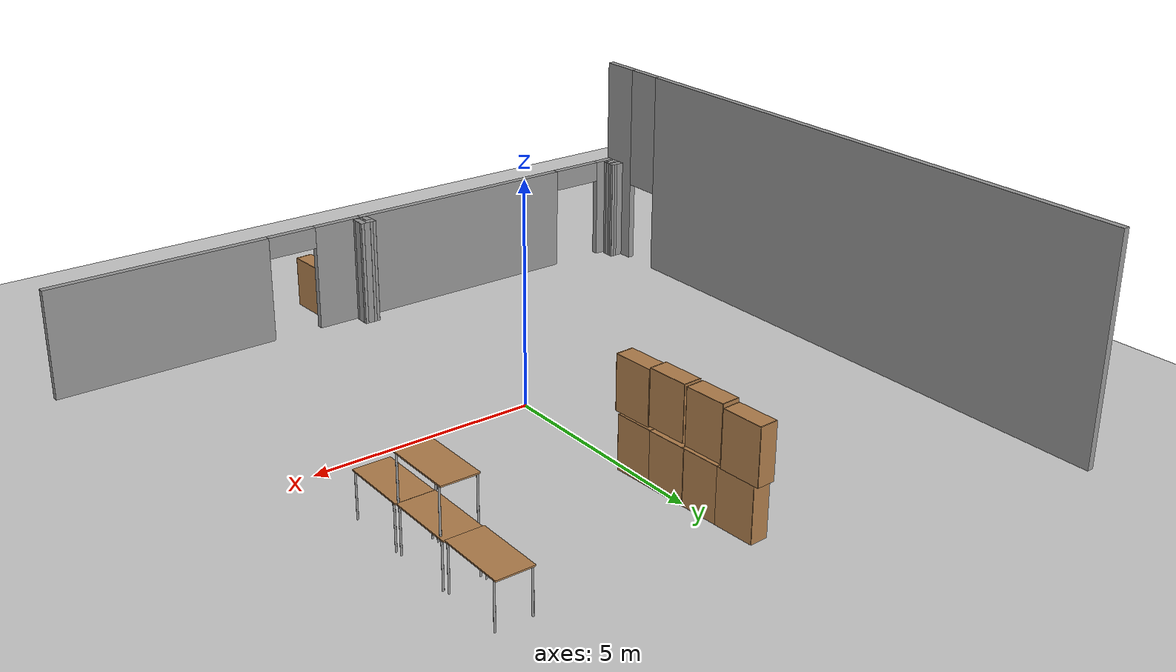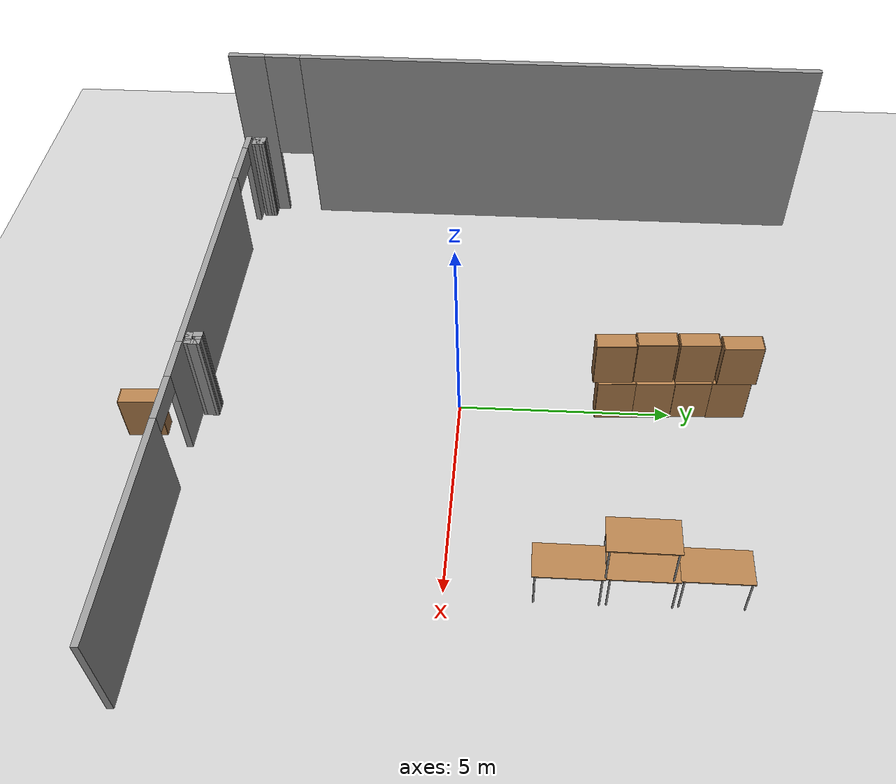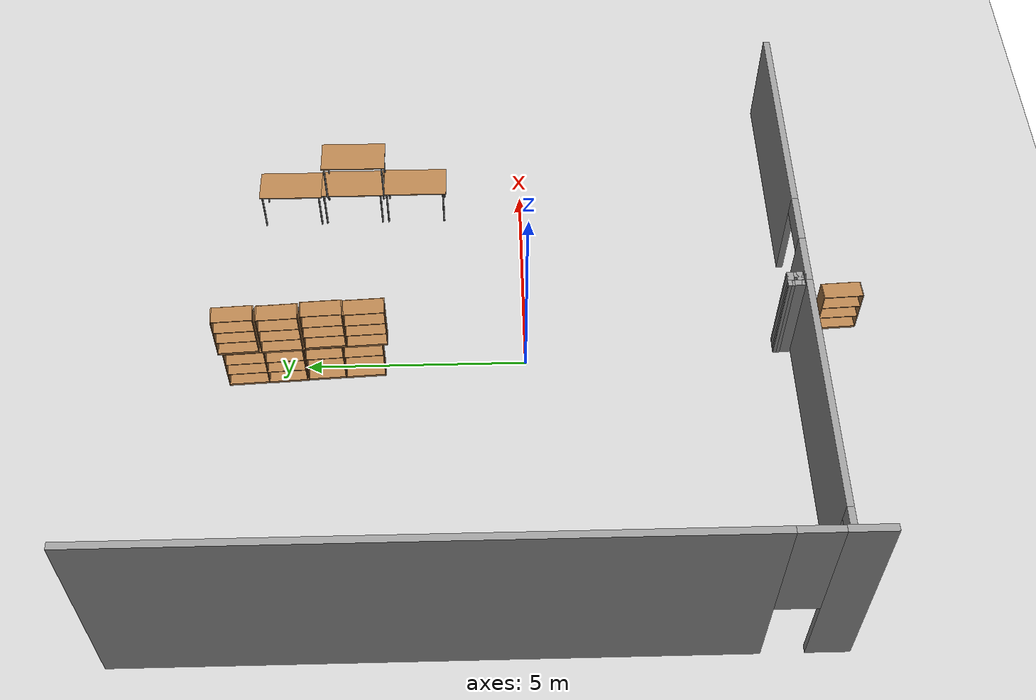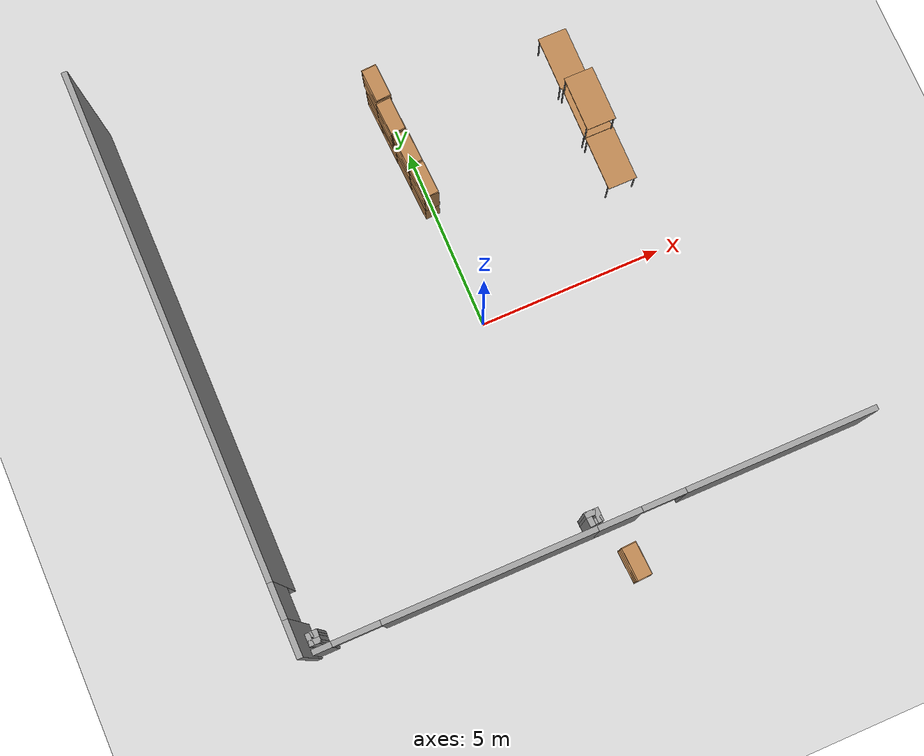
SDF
<sdf version="1.7">
 <world name="default">
  <model name="ground_plane">
   <static>1</static>
   <link name="link">
    <collision name="collision">
     <geometry><plane><normal>0 0 1</normal><size>100 100</size></plane></geometry>
     <surface>
      <contact><collide_bitmask>65535</collide_bitmask></contact>
      <friction><ode><mu>100</mu><mu2>50</mu2></ode></friction>
     </surface>
    </collision>
    <visual name="visual">
     <cast_shadows>0</cast_shadows>
     <geometry><plane><normal>0 0 1</normal><size>100 100</size></plane></geometry>
     <material>
      <script><uri>file://media/materials/scripts/gazebo.material</uri><name>Gazebo/Grey</name></script>
     </material>
    </visual>
   </link>
  </model>
  <model name="XXXXX_office_centered">
   <pose>8.46852 -9.33941 0 0 -0 0</pose>
   <link name="Wall_0">
    <pose>-15.6747 10.5251 0 0 -0 1.5708</pose>
    <visual name="Wall_0_Visual_0">
     <pose>-7.03494 0 2.5 0 -0 0</pose>
     <geometry><box><size>0.930116 0.15 5</size></box></geometry>
     <material>
      <script><uri>file://media/materials/scripts/gazebo.material</uri><name>Gazebo/Grey</name></script>
      <ambient>1 1 1 1</ambient>
     </material>
     <meta><layer>0</layer></meta>
    </visual>
    <collision name="Wall_0_Collision_0">
     <geometry><box><size>0.930116 0.15 5</size></box></geometry>
     <pose>-7.03494 0 2.5 0 -0 0</pose>
    </collision>
    <visual name="Wall_0_Visual_1">
     <pose>0.915058 0 2.5 0 -0 0</pose>
     <geometry><box><size>13.1699 0.15 5</size></box></geometry>
     <material>
      <script><uri>file://media/materials/scripts/gazebo.material</uri><name>Gazebo/Grey</name></script>
      <ambient>1 1 1 1</ambient>
     </material>
     <meta><layer>0</layer></meta>
    </visual>
    <collision name="Wall_0_Collision_1">
     <geometry><box><size>13.1699 0.15 5</size></box></geometry>
     <pose>0.915058 0 2.5 0 -0 0</pose>
    </collision>
    <visual name="Wall_0_Visual_2">
     <pose>-6.11988 0 3.5 0 -0 0</pose>
     <geometry><box><size>0.9 0.15 3</size></box></geometry>
     <material>
      <script><uri>file://media/materials/scripts/gazebo.material</uri><name>Gazebo/Grey</name></script>
      <ambient>1 1 1 1</ambient>
     </material>
     <meta><layer>0</layer></meta>
    </visual>
    <collision name="Wall_0_Collision_2">
     <geometry><box><size>0.9 0.15 3</size></box></geometry>
     <pose>-6.11988 0 3.5 0 -0 0</pose>
    </collision>
   </link>
   <link name="Wall_112">
    <collision name="Wall_112_Collision">
     <geometry><box><size>0.358506 0.15 2.5</size></box></geometry>
     <pose>0 0 1.25 0 -0 0</pose>
    </collision>
    <visual name="Wall_112_Visual">
     <pose>0 0 1.25 0 -0 0</pose>
     <geometry><box><size>0.358506 0.15 2.5</size></box></geometry>
     <material>
      <script><uri>file://media/materials/scripts/gazebo.material</uri><name>Gazebo/Grey</name></script>
      <ambient>1 1 1 1</ambient>
     </material>
     <meta><layer>0</layer></meta>
    </visual>
    <pose>-15.455 3.56311 0 0 -0 -0.010309</pose>
   </link>
   <link name="Wall_113">
    <collision name="Wall_113_Collision">
     <geometry><box><size>0.341348 0.15 2.5</size></box></geometry>
     <pose>0 0 1.25 0 -0 0</pose>
    </collision>
    <visual name="Wall_113_Visual">
     <pose>0 0 1.25 0 -0 0</pose>
     <geometry><box><size>0.341348 0.15 2.5</size></box></geometry>
     <material>
      <script><uri>file://media/materials/scripts/gazebo.material</uri><name>Gazebo/Grey</name></script>
      <ambient>1 1 1 1</ambient>
     </material>
     <meta><layer>0</layer></meta>
    </visual>
    <pose>-15.3539 3.46638 0 0 -0 -1.60449</pose>
   </link>
   <link name="Wall_114">
    <collision name="Wall_114_Collision">
     <geometry><box><size>0.337013 0.15 2.5</size></box></geometry>
     <pose>0 0 1.25 0 -0 0</pose>
    </collision>
    <visual name="Wall_114_Visual">
     <pose>0 0 1.25 0 -0 0</pose>
     <geometry><box><size>0.337013 0.15 2.5</size></box></geometry>
     <material>
      <script><uri>file://media/materials/scripts/gazebo.material</uri><name>Gazebo/Grey</name></script>
      <ambient>1 1 1 1</ambient>
     </material>
     <meta><layer>0</layer></meta>
    </visual>
    <pose>-15.4507 3.37181 0 0 -0 3.1301</pose>
   </link>
   <link name="Wall_115">
    <collision name="Wall_115_Collision">
     <geometry><box><size>0.326267 0.15 2.5</size></box></geometry>
     <pose>0 0 1.25 0 -0 0</pose>
    </collision>
    <visual name="Wall_115_Visual">
     <pose>0 0 1.25 0 -0 0</pose>
     <geometry><box><size>0.326267 0.15 2.5</size></box></geometry>
     <material>
      <script><uri>file://media/materials/scripts/gazebo.material</uri><name>Gazebo/Grey</name></script>
      <ambient>1 1 1 1</ambient>
     </material>
     <meta><layer>0</layer></meta>
    </visual>
    <pose>-15.5452 3.46101 0 0 -0 1.58299</pose>
   </link>
   <link name="Wall_117">
    <collision name="Wall_117_Collision">
     <geometry><box><size>0.384377 0.15 2.5</size></box></geometry>
     <pose>0 0 1.25 0 -0 0</pose>
    </collision>
    <visual name="Wall_117_Visual">
     <pose>0 0 1.25 0 -0 0</pose>
     <geometry><box><size>0.384377 0.15 2.5</size></box></geometry>
     <material>
      <script><uri>file://media/materials/scripts/gazebo.material</uri><name>Gazebo/Grey</name></script>
      <ambient>1 1 1 1</ambient>
     </material>
     <meta><layer>0</layer></meta>
    </visual>
    <pose>-8.21891 3.44274 0 0 -0 1.60748</pose>
   </link>
   <link name="Wall_118">
    <collision name="Wall_118_Collision">
     <geometry><box><size>0.378002 0.15 2.5</size></box></geometry>
     <pose>0 0 1.25 0 -0 0</pose>
    </collision>
    <visual name="Wall_118_Visual">
     <pose>0 0 1.25 0 -0 0</pose>
     <geometry><box><size>0.378002 0.15 2.5</size></box></geometry>
     <material>
      <script><uri>file://media/materials/scripts/gazebo.material</uri><name>Gazebo/Grey</name></script>
      <ambient>1 1 1 1</ambient>
     </material>
     <meta><layer>0</layer></meta>
    </visual>
    <pose>-8.10928 3.55881 0 0 -0 -0.009434</pose>
   </link>
   <link name="Wall_119">
    <collision name="Wall_119_Collision">
     <geometry><box><size>0.364986 0.15 2.5</size></box></geometry>
     <pose>0 0 1.25 0 -0 0</pose>
    </collision>
    <visual name="Wall_119_Visual">
     <pose>0 0 1.25 0 -0 0</pose>
     <geometry><box><size>0.364986 0.15 2.5</size></box></geometry>
     <material>
      <script><uri>file://media/materials/scripts/gazebo.material</uri><name>Gazebo/Grey</name></script>
      <ambient>1 1 1 1</ambient>
     </material>
     <meta><layer>0</layer></meta>
    </visual>
    <pose>-7.99429 3.45026 0 0 -0 -1.5608</pose>
   </link>
   <link name="Wall_120">
    <collision name="Wall_120_Collision">
     <geometry><box><size>0.362837 0.15 2.5</size></box></geometry>
     <pose>0 0 1.25 0 -0 0</pose>
    </collision>
    <visual name="Wall_120_Visual">
     <pose>0 0 1.25 0 -0 0</pose>
     <geometry><box><size>0.362837 0.15 2.5</size></box></geometry>
     <material>
      <script><uri>file://media/materials/scripts/gazebo.material</uri><name>Gazebo/Grey</name></script>
      <ambient>1 1 1 1</ambient>
     </material>
     <meta><layer>0</layer></meta>
    </visual>
    <pose>-8.09961 3.34064 0 0 -0 -3.12139</pose>
   </link>
   <link name="Wall_36">
    <pose>-11.8534 3.15504 0 0 -0 0</pose>
    <visual name="Wall_36_Visual_0">
     <pose>-3.55705 0 1.25 0 -0 0</pose>
     <geometry><box><size>0.635899 0.15 2.5</size></box></geometry>
     <material>
      <script><uri>file://media/materials/scripts/gazebo.material</uri><name>Gazebo/Grey</name></script>
      <ambient>1 1 1 1</ambient>
     </material>
     <meta><layer>0</layer></meta>
    </visual>
    <collision name="Wall_36_Collision_0">
     <geometry><box><size>0.635899 0.15 2.5</size></box></geometry>
     <pose>-3.55705 0 1.25 0 -0 0</pose>
    </collision>
    <visual name="Wall_36_Visual_1">
     <pose>0.956031 0 1.25 0 -0 0</pose>
     <geometry><box><size>5.83794 0.15 2.5</size></box></geometry>
     <material>
      <script><uri>file://media/materials/scripts/gazebo.material</uri><name>Gazebo/Grey</name></script>
      <ambient>1 1 1 1</ambient>
     </material>
     <meta><layer>0</layer></meta>
    </visual>
    <collision name="Wall_36_Collision_1">
     <geometry><box><size>5.83794 0.15 2.5</size></box></geometry>
     <pose>0.956031 0 1.25 0 -0 0</pose>
    </collision>
    <visual name="Wall_36_Visual_2">
     <pose>-2.60102 0 2.25 0 -0 0</pose>
     <geometry><box><size>1.27616 0.15 0.5</size></box></geometry>
     <material>
      <script><uri>file://media/materials/scripts/gazebo.material</uri><name>Gazebo/Grey</name></script>
      <ambient>1 1 1 1</ambient>
     </material>
     <meta><layer>0</layer></meta>
    </visual>
    <collision name="Wall_36_Collision_2">
     <geometry><box><size>1.27616 0.15 0.5</size></box></geometry>
     <pose>-2.60102 0 2.25 0 -0 0</pose>
    </collision>
   </link>
   <link name="Wall_37">
    <pose>-4.37835 3.15504 0 0 -0 0</pose>
    <visual name="Wall_37_Visual_0">
     <pose>-3.16264 0 1.25 0 -0 0</pose>
     <geometry><box><size>1.17472 0.15 2.5</size></box></geometry>
     <material>
      <script><uri>file://media/materials/scripts/gazebo.material</uri><name>Gazebo/Grey</name></script>
      <ambient>1 1 1 1</ambient>
     </material>
     <meta><layer>0</layer></meta>
    </visual>
    <collision name="Wall_37_Collision_0">
     <geometry><box><size>1.17472 0.15 2.5</size></box></geometry>
     <pose>-3.16264 0 1.25 0 -0 0</pose>
    </collision>
    <visual name="Wall_37_Visual_1">
     <pose>1.17415 0 1.25 0 -0 0</pose>
     <geometry><box><size>5.15171 0.15 2.5</size></box></geometry>
     <material>
      <script><uri>file://media/materials/scripts/gazebo.material</uri><name>Gazebo/Grey</name></script>
      <ambient>1 1 1 1</ambient>
     </material>
     <meta><layer>0</layer></meta>
    </visual>
    <collision name="Wall_37_Collision_1">
     <geometry><box><size>5.15171 0.15 2.5</size></box></geometry>
     <pose>1.17415 0 1.25 0 -0 0</pose>
    </collision>
    <visual name="Wall_37_Visual_2">
     <pose>-1.98849 0 2.25 0 -0 0</pose>
     <geometry><box><size>1.17357 0.15 0.5</size></box></geometry>
     <material>
      <script><uri>file://media/materials/scripts/gazebo.material</uri><name>Gazebo/Grey</name></script>
      <ambient>1 1 1 1</ambient>
     </material>
     <meta><layer>0</layer></meta>
    </visual>
    <collision name="Wall_37_Collision_2">
     <geometry><box><size>1.17357 0.15 0.5</size></box></geometry>
     <pose>-1.98849 0 2.25 0 -0 0</pose>
    </collision>
   </link>
   <static>1</static>
  </model>
  <model name="bookshelf_9_clone_1">
   <static>1</static>
   <link name="link">
    <inertial><mass>1</mass></inertial>
    <collision name="collision_back">
     <pose>0 0.005 0.6 0 -0 0</pose>
     <geometry><box><size>0.9 0.01 1.2</size></box></geometry>
    </collision>
    <visual name="visual1">
     <pose>0 0.005 0.6 0 -0 0</pose>
     <geometry><box><size>0.9 0.01 1.2</size></box></geometry>
     <material>
      <script><uri>file://media/materials/scripts/gazebo.material</uri><name>Gazebo/Wood</name></script>
     </material>
    </visual>
    <collision name="left_side">
     <pose>0.45 -0.195 0.6 0 -0 0</pose>
     <geometry><box><size>0.02 0.4 1.2</size></box></geometry>
    </collision>
    <visual name="visual2">
     <pose>0.45 -0.195 0.6 0 -0 0</pose>
     <geometry><box><size>0.02 0.4 1.2</size></box></geometry>
     <material>
      <script><uri>file://media/materials/scripts/gazebo.material</uri><name>Gazebo/Wood</name></script>
     </material>
    </visual>
    <collision name="right_side">
     <pose>-0.45 -0.195 0.6 0 -0 0</pose>
     <geometry><box><size>0.02 0.4 1.2</size></box></geometry>
    </collision>
    <visual name="visual3">
     <pose>-0.45 -0.195 0.6 0 -0 0</pose>
     <geometry><box><size>0.02 0.4 1.2</size></box></geometry>
     <material>
      <script><uri>file://media/materials/scripts/gazebo.material</uri><name>Gazebo/Wood</name></script>
     </material>
    </visual>
    <collision name="bottom">
     <pose>0 -0.195 0.03 0 -0 0</pose>
     <geometry><box><size>0.88 0.4 0.06</size></box></geometry>
    </collision>
    <visual name="visual4">
     <pose>0 -0.195 0.03 0 -0 0</pose>
     <geometry><box><size>0.88 0.4 0.06</size></box></geometry>
     <material>
      <script><uri>file://media/materials/scripts/gazebo.material</uri><name>Gazebo/Wood</name></script>
     </material>
    </visual>
    <collision name="top">
     <pose>0 -0.195 1.19 0 -0 0</pose>
     <geometry><box><size>0.88 0.4 0.02</size></box></geometry>
    </collision>
    <visual name="visual5">
     <pose>0 -0.195 1.19 0 -0 0</pose>
     <geometry><box><size>0.88 0.4 0.02</size></box></geometry>
     <material>
      <script><uri>file://media/materials/scripts/gazebo.material</uri><name>Gazebo/Wood</name></script>
     </material>
    </visual>
    <collision name="low_shelf">
     <pose>0 -0.195 0.43 0 -0 0</pose>
     <geometry><box><size>0.88 0.4 0.02</size></box></geometry>
    </collision>
    <visual name="visual6">
     <pose>0 -0.195 0.43 0 -0 0</pose>
     <geometry><box><size>0.88 0.4 0.02</size></box></geometry>
     <material>
      <script><uri>file://media/materials/scripts/gazebo.material</uri><name>Gazebo/Wood</name></script>
     </material>
    </visual>
    <collision name="high_shelf">
     <pose>0 -0.195 0.8 0 -0 0</pose>
     <geometry><box><size>0.88 0.4 0.02</size></box></geometry>
    </collision>
    <visual name="visual7">
     <pose>0 -0.195 0.8 0 -0 0</pose>
     <geometry><box><size>0.88 0.4 0.02</size></box></geometry>
     <material>
      <script><uri>file://media/materials/scripts/gazebo.material</uri><name>Gazebo/Wood</name></script>
     </material>
    </visual>
   </link>
   <pose>1.21818 -7.23589 0 0 0 -1.51799</pose>
  </model>
  <model name="bookshelf_9_clone_1_clone">
   <static>1</static>
   <link name="link">
    <inertial><mass>1</mass></inertial>
    <collision name="collision_back">
     <pose>0 0.005 0.6 0 -0 0</pose>
     <geometry><box><size>0.9 0.01 1.2</size></box></geometry>
    </collision>
    <visual name="visual1">
     <pose>0 0.005 0.6 0 -0 0</pose>
     <geometry><box><size>0.9 0.01 1.2</size></box></geometry>
     <material>
      <script><uri>file://media/materials/scripts/gazebo.material</uri><name>Gazebo/Wood</name></script>
     </material>
    </visual>
    <collision name="left_side">
     <pose>0.45 -0.195 0.6 0 -0 0</pose>
     <geometry><box><size>0.02 0.4 1.2</size></box></geometry>
    </collision>
    <visual name="visual2">
     <pose>0.45 -0.195 0.6 0 -0 0</pose>
     <geometry><box><size>0.02 0.4 1.2</size></box></geometry>
     <material>
      <script><uri>file://media/materials/scripts/gazebo.material</uri><name>Gazebo/Wood</name></script>
     </material>
    </visual>
    <collision name="right_side">
     <pose>-0.45 -0.195 0.6 0 -0 0</pose>
     <geometry><box><size>0.02 0.4 1.2</size></box></geometry>
    </collision>
    <visual name="visual3">
     <pose>-0.45 -0.195 0.6 0 -0 0</pose>
     <geometry><box><size>0.02 0.4 1.2</size></box></geometry>
     <material>
      <script><uri>file://media/materials/scripts/gazebo.material</uri><name>Gazebo/Wood</name></script>
     </material>
    </visual>
    <collision name="bottom">
     <pose>0 -0.195 0.03 0 -0 0</pose>
     <geometry><box><size>0.88 0.4 0.06</size></box></geometry>
    </collision>
    <visual name="visual4">
     <pose>0 -0.195 0.03 0 -0 0</pose>
     <geometry><box><size>0.88 0.4 0.06</size></box></geometry>
     <material>
      <script><uri>file://media/materials/scripts/gazebo.material</uri><name>Gazebo/Wood</name></script>
     </material>
    </visual>
    <collision name="top">
     <pose>0 -0.195 1.19 0 -0 0</pose>
     <geometry><box><size>0.88 0.4 0.02</size></box></geometry>
    </collision>
    <visual name="visual5">
     <pose>0 -0.195 1.19 0 -0 0</pose>
     <geometry><box><size>0.88 0.4 0.02</size></box></geometry>
     <material>
      <script><uri>file://media/materials/scripts/gazebo.material</uri><name>Gazebo/Wood</name></script>
     </material>
    </visual>
    <collision name="low_shelf">
     <pose>0 -0.195 0.43 0 -0 0</pose>
     <geometry><box><size>0.88 0.4 0.02</size></box></geometry>
    </collision>
    <visual name="visual6">
     <pose>0 -0.195 0.43 0 -0 0</pose>
     <geometry><box><size>0.88 0.4 0.02</size></box></geometry>
     <material>
      <script><uri>file://media/materials/scripts/gazebo.material</uri><name>Gazebo/Wood</name></script>
     </material>
    </visual>
    <collision name="high_shelf">
     <pose>0 -0.195 0.8 0 -0 0</pose>
     <geometry><box><size>0.88 0.4 0.02</size></box></geometry>
    </collision>
    <visual name="visual7">
     <pose>0 -0.195 0.8 0 -0 0</pose>
     <geometry><box><size>0.88 0.4 0.02</size></box></geometry>
     <material>
      <script><uri>file://media/materials/scripts/gazebo.material</uri><name>Gazebo/Wood</name></script>
     </material>
    </visual>
   </link>
   <pose>-0.034011 6.32086 0 0 0 -1.51799</pose>
  </model>
  <model name="bookshelf_9_clone_1_clone_0">
   <static>1</static>
   <link name="link">
    <inertial><mass>1</mass></inertial>
    <collision name="collision_back">
     <pose>0 0.005 0.6 0 -0 0</pose>
     <geometry><box><size>0.9 0.01 1.2</size></box></geometry>
    </collision>
    <visual name="visual1">
     <pose>0 0.005 0.6 0 -0 0</pose>
     <geometry><box><size>0.9 0.01 1.2</size></box></geometry>
     <material>
      <script><uri>file://media/materials/scripts/gazebo.material</uri><name>Gazebo/Wood</name></script>
     </material>
    </visual>
    <collision name="left_side">
     <pose>0.45 -0.195 0.6 0 -0 0</pose>
     <geometry><box><size>0.02 0.4 1.2</size></box></geometry>
    </collision>
    <visual name="visual2">
     <pose>0.45 -0.195 0.6 0 -0 0</pose>
     <geometry><box><size>0.02 0.4 1.2</size></box></geometry>
     <material>
      <script><uri>file://media/materials/scripts/gazebo.material</uri><name>Gazebo/Wood</name></script>
     </material>
    </visual>
    <collision name="right_side">
     <pose>-0.45 -0.195 0.6 0 -0 0</pose>
     <geometry><box><size>0.02 0.4 1.2</size></box></geometry>
    </collision>
    <visual name="visual3">
     <pose>-0.45 -0.195 0.6 0 -0 0</pose>
     <geometry><box><size>0.02 0.4 1.2</size></box></geometry>
     <material>
      <script><uri>file://media/materials/scripts/gazebo.material</uri><name>Gazebo/Wood</name></script>
     </material>
    </visual>
    <collision name="bottom">
     <pose>0 -0.195 0.03 0 -0 0</pose>
     <geometry><box><size>0.88 0.4 0.06</size></box></geometry>
    </collision>
    <visual name="visual4">
     <pose>0 -0.195 0.03 0 -0 0</pose>
     <geometry><box><size>0.88 0.4 0.06</size></box></geometry>
     <material>
      <script><uri>file://media/materials/scripts/gazebo.material</uri><name>Gazebo/Wood</name></script>
     </material>
    </visual>
    <collision name="top">
     <pose>0 -0.195 1.19 0 -0 0</pose>
     <geometry><box><size>0.88 0.4 0.02</size></box></geometry>
    </collision>
    <visual name="visual5">
     <pose>0 -0.195 1.19 0 -0 0</pose>
     <geometry><box><size>0.88 0.4 0.02</size></box></geometry>
     <material>
      <script><uri>file://media/materials/scripts/gazebo.material</uri><name>Gazebo/Wood</name></script>
     </material>
    </visual>
    <collision name="low_shelf">
     <pose>0 -0.195 0.43 0 -0 0</pose>
     <geometry><box><size>0.88 0.4 0.02</size></box></geometry>
    </collision>
    <visual name="visual6">
     <pose>0 -0.195 0.43 0 -0 0</pose>
     <geometry><box><size>0.88 0.4 0.02</size></box></geometry>
     <material>
      <script><uri>file://media/materials/scripts/gazebo.material</uri><name>Gazebo/Wood</name></script>
     </material>
    </visual>
    <collision name="high_shelf">
     <pose>0 -0.195 0.8 0 -0 0</pose>
     <geometry><box><size>0.88 0.4 0.02</size></box></geometry>
    </collision>
    <visual name="visual7">
     <pose>0 -0.195 0.8 0 -0 0</pose>
     <geometry><box><size>0.88 0.4 0.02</size></box></geometry>
     <material>
      <script><uri>file://media/materials/scripts/gazebo.material</uri><name>Gazebo/Wood</name></script>
     </material>
    </visual>
   </link>
   <pose>0.010592 5.42617 0 0 0 -1.51799</pose>
  </model>
  <model name="bookshelf_9_clone_1_clone_1">
   <static>1</static>
   <link name="link">
    <inertial><mass>1</mass></inertial>
    <collision name="collision_back">
     <pose>0 0.005 0.6 0 -0 0</pose>
     <geometry><box><size>0.9 0.01 1.2</size></box></geometry>
    </collision>
    <visual name="visual1">
     <pose>0 0.005 0.6 0 -0 0</pose>
     <geometry><box><size>0.9 0.01 1.2</size></box></geometry>
     <material>
      <script><uri>file://media/materials/scripts/gazebo.material</uri><name>Gazebo/Wood</name></script>
     </material>
    </visual>
    <collision name="left_side">
     <pose>0.45 -0.195 0.6 0 -0 0</pose>
     <geometry><box><size>0.02 0.4 1.2</size></box></geometry>
    </collision>
    <visual name="visual2">
     <pose>0.45 -0.195 0.6 0 -0 0</pose>
     <geometry><box><size>0.02 0.4 1.2</size></box></geometry>
     <material>
      <script><uri>file://media/materials/scripts/gazebo.material</uri><name>Gazebo/Wood</name></script>
     </material>
    </visual>
    <collision name="right_side">
     <pose>-0.45 -0.195 0.6 0 -0 0</pose>
     <geometry><box><size>0.02 0.4 1.2</size></box></geometry>
    </collision>
    <visual name="visual3">
     <pose>-0.45 -0.195 0.6 0 -0 0</pose>
     <geometry><box><size>0.02 0.4 1.2</size></box></geometry>
     <material>
      <script><uri>file://media/materials/scripts/gazebo.material</uri><name>Gazebo/Wood</name></script>
     </material>
    </visual>
    <collision name="bottom">
     <pose>0 -0.195 0.03 0 -0 0</pose>
     <geometry><box><size>0.88 0.4 0.06</size></box></geometry>
    </collision>
    <visual name="visual4">
     <pose>0 -0.195 0.03 0 -0 0</pose>
     <geometry><box><size>0.88 0.4 0.06</size></box></geometry>
     <material>
      <script><uri>file://media/materials/scripts/gazebo.material</uri><name>Gazebo/Wood</name></script>
     </material>
    </visual>
    <collision name="top">
     <pose>0 -0.195 1.19 0 -0 0</pose>
     <geometry><box><size>0.88 0.4 0.02</size></box></geometry>
    </collision>
    <visual name="visual5">
     <pose>0 -0.195 1.19 0 -0 0</pose>
     <geometry><box><size>0.88 0.4 0.02</size></box></geometry>
     <material>
      <script><uri>file://media/materials/scripts/gazebo.material</uri><name>Gazebo/Wood</name></script>
     </material>
    </visual>
    <collision name="low_shelf">
     <pose>0 -0.195 0.43 0 -0 0</pose>
     <geometry><box><size>0.88 0.4 0.02</size></box></geometry>
    </collision>
    <visual name="visual6">
     <pose>0 -0.195 0.43 0 -0 0</pose>
     <geometry><box><size>0.88 0.4 0.02</size></box></geometry>
     <material>
      <script><uri>file://media/materials/scripts/gazebo.material</uri><name>Gazebo/Wood</name></script>
     </material>
    </visual>
    <collision name="high_shelf">
     <pose>0 -0.195 0.8 0 -0 0</pose>
     <geometry><box><size>0.88 0.4 0.02</size></box></geometry>
    </collision>
    <visual name="visual7">
     <pose>0 -0.195 0.8 0 -0 0</pose>
     <geometry><box><size>0.88 0.4 0.02</size></box></geometry>
     <material>
      <script><uri>file://media/materials/scripts/gazebo.material</uri><name>Gazebo/Wood</name></script>
     </material>
    </visual>
   </link>
   <pose>0.064011 4.56579 0 0 0 -1.51799</pose>
  </model>
  <model name="bookshelf_9_clone_1_clone_2">
   <static>1</static>
   <link name="link">
    <inertial><mass>1</mass></inertial>
    <collision name="collision_back">
     <pose>0 0.005 0.6 0 -0 0</pose>
     <geometry><box><size>0.9 0.01 1.2</size></box></geometry>
    </collision>
    <visual name="visual1">
     <pose>0 0.005 0.6 0 -0 0</pose>
     <geometry><box><size>0.9 0.01 1.2</size></box></geometry>
     <material>
      <script><uri>file://media/materials/scripts/gazebo.material</uri><name>Gazebo/Wood</name></script>
     </material>
    </visual>
    <collision name="left_side">
     <pose>0.45 -0.195 0.6 0 -0 0</pose>
     <geometry><box><size>0.02 0.4 1.2</size></box></geometry>
    </collision>
    <visual name="visual2">
     <pose>0.45 -0.195 0.6 0 -0 0</pose>
     <geometry><box><size>0.02 0.4 1.2</size></box></geometry>
     <material>
      <script><uri>file://media/materials/scripts/gazebo.material</uri><name>Gazebo/Wood</name></script>
     </material>
    </visual>
    <collision name="right_side">
     <pose>-0.45 -0.195 0.6 0 -0 0</pose>
     <geometry><box><size>0.02 0.4 1.2</size></box></geometry>
    </collision>
    <visual name="visual3">
     <pose>-0.45 -0.195 0.6 0 -0 0</pose>
     <geometry><box><size>0.02 0.4 1.2</size></box></geometry>
     <material>
      <script><uri>file://media/materials/scripts/gazebo.material</uri><name>Gazebo/Wood</name></script>
     </material>
    </visual>
    <collision name="bottom">
     <pose>0 -0.195 0.03 0 -0 0</pose>
     <geometry><box><size>0.88 0.4 0.06</size></box></geometry>
    </collision>
    <visual name="visual4">
     <pose>0 -0.195 0.03 0 -0 0</pose>
     <geometry><box><size>0.88 0.4 0.06</size></box></geometry>
     <material>
      <script><uri>file://media/materials/scripts/gazebo.material</uri><name>Gazebo/Wood</name></script>
     </material>
    </visual>
    <collision name="top">
     <pose>0 -0.195 1.19 0 -0 0</pose>
     <geometry><box><size>0.88 0.4 0.02</size></box></geometry>
    </collision>
    <visual name="visual5">
     <pose>0 -0.195 1.19 0 -0 0</pose>
     <geometry><box><size>0.88 0.4 0.02</size></box></geometry>
     <material>
      <script><uri>file://media/materials/scripts/gazebo.material</uri><name>Gazebo/Wood</name></script>
     </material>
    </visual>
    <collision name="low_shelf">
     <pose>0 -0.195 0.43 0 -0 0</pose>
     <geometry><box><size>0.88 0.4 0.02</size></box></geometry>
    </collision>
    <visual name="visual6">
     <pose>0 -0.195 0.43 0 -0 0</pose>
     <geometry><box><size>0.88 0.4 0.02</size></box></geometry>
     <material>
      <script><uri>file://media/materials/scripts/gazebo.material</uri><name>Gazebo/Wood</name></script>
     </material>
    </visual>
    <collision name="high_shelf">
     <pose>0 -0.195 0.8 0 -0 0</pose>
     <geometry><box><size>0.88 0.4 0.02</size></box></geometry>
    </collision>
    <visual name="visual7">
     <pose>0 -0.195 0.8 0 -0 0</pose>
     <geometry><box><size>0.88 0.4 0.02</size></box></geometry>
     <material>
      <script><uri>file://media/materials/scripts/gazebo.material</uri><name>Gazebo/Wood</name></script>
     </material>
    </visual>
   </link>
   <pose>0.107647 3.68906 0 0 0 -1.51799</pose>
  </model>
  <model name="bookshelf_9_clone_1_clone_3">
   <static>1</static>
   <link name="link">
    <inertial><mass>1</mass></inertial>
    <collision name="collision_back">
     <pose>0 0.005 0.6 0 -0 0</pose>
     <geometry><box><size>0.9 0.01 1.2</size></box></geometry>
    </collision>
    <visual name="visual1">
     <pose>0 0.005 0.6 0 -0 0</pose>
     <geometry><box><size>0.9 0.01 1.2</size></box></geometry>
     <material>
      <script><uri>file://media/materials/scripts/gazebo.material</uri><name>Gazebo/Wood</name></script>
     </material>
    </visual>
    <collision name="left_side">
     <pose>0.45 -0.195 0.6 0 -0 0</pose>
     <geometry><box><size>0.02 0.4 1.2</size></box></geometry>
    </collision>
    <visual name="visual2">
     <pose>0.45 -0.195 0.6 0 -0 0</pose>
     <geometry><box><size>0.02 0.4 1.2</size></box></geometry>
     <material>
      <script><uri>file://media/materials/scripts/gazebo.material</uri><name>Gazebo/Wood</name></script>
     </material>
    </visual>
    <collision name="right_side">
     <pose>-0.45 -0.195 0.6 0 -0 0</pose>
     <geometry><box><size>0.02 0.4 1.2</size></box></geometry>
    </collision>
    <visual name="visual3">
     <pose>-0.45 -0.195 0.6 0 -0 0</pose>
     <geometry><box><size>0.02 0.4 1.2</size></box></geometry>
     <material>
      <script><uri>file://media/materials/scripts/gazebo.material</uri><name>Gazebo/Wood</name></script>
     </material>
    </visual>
    <collision name="bottom">
     <pose>0 -0.195 0.03 0 -0 0</pose>
     <geometry><box><size>0.88 0.4 0.06</size></box></geometry>
    </collision>
    <visual name="visual4">
     <pose>0 -0.195 0.03 0 -0 0</pose>
     <geometry><box><size>0.88 0.4 0.06</size></box></geometry>
     <material>
      <script><uri>file://media/materials/scripts/gazebo.material</uri><name>Gazebo/Wood</name></script>
     </material>
    </visual>
    <collision name="top">
     <pose>0 -0.195 1.19 0 -0 0</pose>
     <geometry><box><size>0.88 0.4 0.02</size></box></geometry>
    </collision>
    <visual name="visual5">
     <pose>0 -0.195 1.19 0 -0 0</pose>
     <geometry><box><size>0.88 0.4 0.02</size></box></geometry>
     <material>
      <script><uri>file://media/materials/scripts/gazebo.material</uri><name>Gazebo/Wood</name></script>
     </material>
    </visual>
    <collision name="low_shelf">
     <pose>0 -0.195 0.43 0 -0 0</pose>
     <geometry><box><size>0.88 0.4 0.02</size></box></geometry>
    </collision>
    <visual name="visual6">
     <pose>0 -0.195 0.43 0 -0 0</pose>
     <geometry><box><size>0.88 0.4 0.02</size></box></geometry>
     <material>
      <script><uri>file://media/materials/scripts/gazebo.material</uri><name>Gazebo/Wood</name></script>
     </material>
    </visual>
    <collision name="high_shelf">
     <pose>0 -0.195 0.8 0 -0 0</pose>
     <geometry><box><size>0.88 0.4 0.02</size></box></geometry>
    </collision>
    <visual name="visual7">
     <pose>0 -0.195 0.8 0 -0 0</pose>
     <geometry><box><size>0.88 0.4 0.02</size></box></geometry>
     <material>
      <script><uri>file://media/materials/scripts/gazebo.material</uri><name>Gazebo/Wood</name></script>
     </material>
    </visual>
   </link>
   <pose>-0.035526 5.44347 1.23606 0 0 -1.51799</pose>
  </model>
  <model name="bookshelf_9_clone_1_clone_4">
   <static>1</static>
   <link name="link">
    <inertial><mass>1</mass></inertial>
    <collision name="collision_back">
     <pose>0 0.005 0.6 0 -0 0</pose>
     <geometry><box><size>0.9 0.01 1.2</size></box></geometry>
    </collision>
    <visual name="visual1">
     <pose>0 0.005 0.6 0 -0 0</pose>
     <geometry><box><size>0.9 0.01 1.2</size></box></geometry>
     <material>
      <script><uri>file://media/materials/scripts/gazebo.material</uri><name>Gazebo/Wood</name></script>
     </material>
    </visual>
    <collision name="left_side">
     <pose>0.45 -0.195 0.6 0 -0 0</pose>
     <geometry><box><size>0.02 0.4 1.2</size></box></geometry>
    </collision>
    <visual name="visual2">
     <pose>0.45 -0.195 0.6 0 -0 0</pose>
     <geometry><box><size>0.02 0.4 1.2</size></box></geometry>
     <material>
      <script><uri>file://media/materials/scripts/gazebo.material</uri><name>Gazebo/Wood</name></script>
     </material>
    </visual>
    <collision name="right_side">
     <pose>-0.45 -0.195 0.6 0 -0 0</pose>
     <geometry><box><size>0.02 0.4 1.2</size></box></geometry>
    </collision>
    <visual name="visual3">
     <pose>-0.45 -0.195 0.6 0 -0 0</pose>
     <geometry><box><size>0.02 0.4 1.2</size></box></geometry>
     <material>
      <script><uri>file://media/materials/scripts/gazebo.material</uri><name>Gazebo/Wood</name></script>
     </material>
    </visual>
    <collision name="bottom">
     <pose>0 -0.195 0.03 0 -0 0</pose>
     <geometry><box><size>0.88 0.4 0.06</size></box></geometry>
    </collision>
    <visual name="visual4">
     <pose>0 -0.195 0.03 0 -0 0</pose>
     <geometry><box><size>0.88 0.4 0.06</size></box></geometry>
     <material>
      <script><uri>file://media/materials/scripts/gazebo.material</uri><name>Gazebo/Wood</name></script>
     </material>
    </visual>
    <collision name="top">
     <pose>0 -0.195 1.19 0 -0 0</pose>
     <geometry><box><size>0.88 0.4 0.02</size></box></geometry>
    </collision>
    <visual name="visual5">
     <pose>0 -0.195 1.19 0 -0 0</pose>
     <geometry><box><size>0.88 0.4 0.02</size></box></geometry>
     <material>
      <script><uri>file://media/materials/scripts/gazebo.material</uri><name>Gazebo/Wood</name></script>
     </material>
    </visual>
    <collision name="low_shelf">
     <pose>0 -0.195 0.43 0 -0 0</pose>
     <geometry><box><size>0.88 0.4 0.02</size></box></geometry>
    </collision>
    <visual name="visual6">
     <pose>0 -0.195 0.43 0 -0 0</pose>
     <geometry><box><size>0.88 0.4 0.02</size></box></geometry>
     <material>
      <script><uri>file://media/materials/scripts/gazebo.material</uri><name>Gazebo/Wood</name></script>
     </material>
    </visual>
    <collision name="high_shelf">
     <pose>0 -0.195 0.8 0 -0 0</pose>
     <geometry><box><size>0.88 0.4 0.02</size></box></geometry>
    </collision>
    <visual name="visual7">
     <pose>0 -0.195 0.8 0 -0 0</pose>
     <geometry><box><size>0.88 0.4 0.02</size></box></geometry>
     <material>
      <script><uri>file://media/materials/scripts/gazebo.material</uri><name>Gazebo/Wood</name></script>
     </material>
    </visual>
   </link>
   <pose>-0.032515 6.41559 1.19413 0 0 -1.51799</pose>
  </model>
  <model name="bookshelf_9_clone_1_clone_3_clone">
   <static>1</static>
   <link name="link">
    <inertial><mass>1</mass></inertial>
    <collision name="collision_back">
     <pose>0 0.005 0.6 0 -0 0</pose>
     <geometry><box><size>0.9 0.01 1.2</size></box></geometry>
    </collision>
    <visual name="visual1">
     <pose>0 0.005 0.6 0 -0 0</pose>
     <geometry><box><size>0.9 0.01 1.2</size></box></geometry>
     <material>
      <script><uri>file://media/materials/scripts/gazebo.material</uri><name>Gazebo/Wood</name></script>
     </material>
    </visual>
    <collision name="left_side">
     <pose>0.45 -0.195 0.6 0 -0 0</pose>
     <geometry><box><size>0.02 0.4 1.2</size></box></geometry>
    </collision>
    <visual name="visual2">
     <pose>0.45 -0.195 0.6 0 -0 0</pose>
     <geometry><box><size>0.02 0.4 1.2</size></box></geometry>
     <material>
      <script><uri>file://media/materials/scripts/gazebo.material</uri><name>Gazebo/Wood</name></script>
     </material>
    </visual>
    <collision name="right_side">
     <pose>-0.45 -0.195 0.6 0 -0 0</pose>
     <geometry><box><size>0.02 0.4 1.2</size></box></geometry>
    </collision>
    <visual name="visual3">
     <pose>-0.45 -0.195 0.6 0 -0 0</pose>
     <geometry><box><size>0.02 0.4 1.2</size></box></geometry>
     <material>
      <script><uri>file://media/materials/scripts/gazebo.material</uri><name>Gazebo/Wood</name></script>
     </material>
    </visual>
    <collision name="bottom">
     <pose>0 -0.195 0.03 0 -0 0</pose>
     <geometry><box><size>0.88 0.4 0.06</size></box></geometry>
    </collision>
    <visual name="visual4">
     <pose>0 -0.195 0.03 0 -0 0</pose>
     <geometry><box><size>0.88 0.4 0.06</size></box></geometry>
     <material>
      <script><uri>file://media/materials/scripts/gazebo.material</uri><name>Gazebo/Wood</name></script>
     </material>
    </visual>
    <collision name="top">
     <pose>0 -0.195 1.19 0 -0 0</pose>
     <geometry><box><size>0.88 0.4 0.02</size></box></geometry>
    </collision>
    <visual name="visual5">
     <pose>0 -0.195 1.19 0 -0 0</pose>
     <geometry><box><size>0.88 0.4 0.02</size></box></geometry>
     <material>
      <script><uri>file://media/materials/scripts/gazebo.material</uri><name>Gazebo/Wood</name></script>
     </material>
    </visual>
    <collision name="low_shelf">
     <pose>0 -0.195 0.43 0 -0 0</pose>
     <geometry><box><size>0.88 0.4 0.02</size></box></geometry>
    </collision>
    <visual name="visual6">
     <pose>0 -0.195 0.43 0 -0 0</pose>
     <geometry><box><size>0.88 0.4 0.02</size></box></geometry>
     <material>
      <script><uri>file://media/materials/scripts/gazebo.material</uri><name>Gazebo/Wood</name></script>
     </material>
    </visual>
    <collision name="high_shelf">
     <pose>0 -0.195 0.8 0 -0 0</pose>
     <geometry><box><size>0.88 0.4 0.02</size></box></geometry>
    </collision>
    <visual name="visual7">
     <pose>0 -0.195 0.8 0 -0 0</pose>
     <geometry><box><size>0.88 0.4 0.02</size></box></geometry>
     <material>
      <script><uri>file://media/materials/scripts/gazebo.material</uri><name>Gazebo/Wood</name></script>
     </material>
    </visual>
   </link>
   <pose>0.025759 4.49009 1.25955 0 0 -1.51799</pose>
  </model>
  <model name="bookshelf_9_clone_1_clone_3_clone_0">
   <static>1</static>
   <link name="link">
    <inertial><mass>1</mass></inertial>
    <collision name="collision_back">
     <pose>0 0.005 0.6 0 -0 0</pose>
     <geometry><box><size>0.9 0.01 1.2</size></box></geometry>
    </collision>
    <visual name="visual1">
     <pose>0 0.005 0.6 0 -0 0</pose>
     <geometry><box><size>0.9 0.01 1.2</size></box></geometry>
     <material>
      <script><uri>file://media/materials/scripts/gazebo.material</uri><name>Gazebo/Wood</name></script>
     </material>
    </visual>
    <collision name="left_side">
     <pose>0.45 -0.195 0.6 0 -0 0</pose>
     <geometry><box><size>0.02 0.4 1.2</size></box></geometry>
    </collision>
    <visual name="visual2">
     <pose>0.45 -0.195 0.6 0 -0 0</pose>
     <geometry><box><size>0.02 0.4 1.2</size></box></geometry>
     <material>
      <script><uri>file://media/materials/scripts/gazebo.material</uri><name>Gazebo/Wood</name></script>
     </material>
    </visual>
    <collision name="right_side">
     <pose>-0.45 -0.195 0.6 0 -0 0</pose>
     <geometry><box><size>0.02 0.4 1.2</size></box></geometry>
    </collision>
    <visual name="visual3">
     <pose>-0.45 -0.195 0.6 0 -0 0</pose>
     <geometry><box><size>0.02 0.4 1.2</size></box></geometry>
     <material>
      <script><uri>file://media/materials/scripts/gazebo.material</uri><name>Gazebo/Wood</name></script>
     </material>
    </visual>
    <collision name="bottom">
     <pose>0 -0.195 0.03 0 -0 0</pose>
     <geometry><box><size>0.88 0.4 0.06</size></box></geometry>
    </collision>
    <visual name="visual4">
     <pose>0 -0.195 0.03 0 -0 0</pose>
     <geometry><box><size>0.88 0.4 0.06</size></box></geometry>
     <material>
      <script><uri>file://media/materials/scripts/gazebo.material</uri><name>Gazebo/Wood</name></script>
     </material>
    </visual>
    <collision name="top">
     <pose>0 -0.195 1.19 0 -0 0</pose>
     <geometry><box><size>0.88 0.4 0.02</size></box></geometry>
    </collision>
    <visual name="visual5">
     <pose>0 -0.195 1.19 0 -0 0</pose>
     <geometry><box><size>0.88 0.4 0.02</size></box></geometry>
     <material>
      <script><uri>file://media/materials/scripts/gazebo.material</uri><name>Gazebo/Wood</name></script>
     </material>
    </visual>
    <collision name="low_shelf">
     <pose>0 -0.195 0.43 0 -0 0</pose>
     <geometry><box><size>0.88 0.4 0.02</size></box></geometry>
    </collision>
    <visual name="visual6">
     <pose>0 -0.195 0.43 0 -0 0</pose>
     <geometry><box><size>0.88 0.4 0.02</size></box></geometry>
     <material>
      <script><uri>file://media/materials/scripts/gazebo.material</uri><name>Gazebo/Wood</name></script>
     </material>
    </visual>
    <collision name="high_shelf">
     <pose>0 -0.195 0.8 0 -0 0</pose>
     <geometry><box><size>0.88 0.4 0.02</size></box></geometry>
    </collision>
    <visual name="visual7">
     <pose>0 -0.195 0.8 0 -0 0</pose>
     <geometry><box><size>0.88 0.4 0.02</size></box></geometry>
     <material>
      <script><uri>file://media/materials/scripts/gazebo.material</uri><name>Gazebo/Wood</name></script>
     </material>
    </visual>
   </link>
   <pose>0.080631 3.5704 1.22047 0 0 -1.51799</pose>
  </model>
  <model name="table_16_clone">
   <static>1</static>
   <link name="link">
    <collision name="surface">
     <pose>0 0 1 0 -0 0</pose>
     <geometry><box><size>1.5 0.8 0.03</size></box></geometry>
     <surface><friction><ode><mu>0.6</mu><mu2>0.6</mu2></ode></friction></surface>
    </collision>
    <visual name="visual1">
     <pose>0 0 1 0 -0 0</pose>
     <geometry><box><size>1.5 0.8 0.03</size></box></geometry>
     <material>
      <script><uri>file://media/materials/scripts/gazebo.material</uri><name>Gazebo/Wood</name></script>
     </material>
    </visual>
    <collision name="collision_front_left_leg">
     <pose>0.68 0.38 0.5 0 -0 0</pose>
     <geometry><cylinder><radius>0.02</radius><length>1</length></cylinder></geometry>
    </collision>
    <visual name="visual_front_left_leg">
     <pose>0.68 0.38 0.5 0 -0 0</pose>
     <geometry><cylinder><radius>0.02</radius><length>1</length></cylinder></geometry>
     <material>
      <script><uri>file://media/materials/scripts/gazebo.material</uri><name>Gazebo/Grey</name></script>
     </material>
    </visual>
    <collision name="collision_front_right_leg">
     <pose>0.68 -0.38 0.5 0 -0 0</pose>
     <geometry><cylinder><radius>0.02</radius><length>1</length></cylinder></geometry>
    </collision>
    <visual name="visual_front_right_leg">
     <pose>0.68 -0.38 0.5 0 -0 0</pose>
     <geometry><cylinder><radius>0.02</radius><length>1</length></cylinder></geometry>
     <material>
      <script><uri>file://media/materials/scripts/gazebo.material</uri><name>Gazebo/Grey</name></script>
     </material>
    </visual>
    <collision name="collision_back_right_leg">
     <pose>-0.68 -0.38 0.5 0 -0 0</pose>
     <geometry><cylinder><radius>0.02</radius><length>1</length></cylinder></geometry>
    </collision>
    <visual name="visual_back_right_leg">
     <pose>-0.68 -0.38 0.5 0 -0 0</pose>
     <geometry><cylinder><radius>0.02</radius><length>1</length></cylinder></geometry>
     <material>
      <script><uri>file://media/materials/scripts/gazebo.material</uri><name>Gazebo/Grey</name></script>
     </material>
    </visual>
    <collision name="collision_back_left_leg">
     <pose>-0.68 0.38 0.5 0 -0 0</pose>
     <geometry><cylinder><radius>0.02</radius><length>1</length></cylinder></geometry>
    </collision>
    <visual name="visual_back_left_leg">
     <pose>-0.68 0.38 0.5 0 -0 0</pose>
     <geometry><cylinder><radius>0.02</radius><length>1</length></cylinder></geometry>
     <material>
      <script><uri>file://media/materials/scripts/gazebo.material</uri><name>Gazebo/Grey</name></script>
     </material>
    </visual>
   </link>
   <pose>4.69613 5.5621 0 0 0 -1.57385</pose>
  </model>
  <model name="table_16_clone_clone">
   <static>1</static>
   <link name="link">
    <collision name="surface">
     <pose>0 0 1 0 -0 0</pose>
     <geometry><box><size>1.5 0.8 0.03</size></box></geometry>
     <surface><friction><ode><mu>0.6</mu><mu2>0.6</mu2></ode></friction></surface>
    </collision>
    <visual name="visual1">
     <pose>0 0 1 0 -0 0</pose>
     <geometry><box><size>1.5 0.8 0.03</size></box></geometry>
     <material>
      <script><uri>file://media/materials/scripts/gazebo.material</uri><name>Gazebo/Wood</name></script>
     </material>
    </visual>
    <collision name="collision_front_left_leg">
     <pose>0.68 0.38 0.5 0 -0 0</pose>
     <geometry><cylinder><radius>0.02</radius><length>1</length></cylinder></geometry>
    </collision>
    <visual name="visual_front_left_leg">
     <pose>0.68 0.38 0.5 0 -0 0</pose>
     <geometry><cylinder><radius>0.02</radius><length>1</length></cylinder></geometry>
     <material>
      <script><uri>file://media/materials/scripts/gazebo.material</uri><name>Gazebo/Grey</name></script>
     </material>
    </visual>
    <collision name="collision_front_right_leg">
     <pose>0.68 -0.38 0.5 0 -0 0</pose>
     <geometry><cylinder><radius>0.02</radius><length>1</length></cylinder></geometry>
    </collision>
    <visual name="visual_front_right_leg">
     <pose>0.68 -0.38 0.5 0 -0 0</pose>
     <geometry><cylinder><radius>0.02</radius><length>1</length></cylinder></geometry>
     <material>
      <script><uri>file://media/materials/scripts/gazebo.material</uri><name>Gazebo/Grey</name></script>
     </material>
    </visual>
    <collision name="collision_back_right_leg">
     <pose>-0.68 -0.38 0.5 0 -0 0</pose>
     <geometry><cylinder><radius>0.02</radius><length>1</length></cylinder></geometry>
    </collision>
    <visual name="visual_back_right_leg">
     <pose>-0.68 -0.38 0.5 0 -0 0</pose>
     <geometry><cylinder><radius>0.02</radius><length>1</length></cylinder></geometry>
     <material>
      <script><uri>file://media/materials/scripts/gazebo.material</uri><name>Gazebo/Grey</name></script>
     </material>
    </visual>
    <collision name="collision_back_left_leg">
     <pose>-0.68 0.38 0.5 0 -0 0</pose>
     <geometry><cylinder><radius>0.02</radius><length>1</length></cylinder></geometry>
    </collision>
    <visual name="visual_back_left_leg">
     <pose>-0.68 0.38 0.5 0 -0 0</pose>
     <geometry><cylinder><radius>0.02</radius><length>1</length></cylinder></geometry>
     <material>
      <script><uri>file://media/materials/scripts/gazebo.material</uri><name>Gazebo/Grey</name></script>
     </material>
    </visual>
   </link>
   <pose>4.72635 4.07386 0 0 0 -1.57385</pose>
  </model>
  <model name="table_16_clone_clone_0">
   <static>1</static>
   <link name="link">
    <collision name="surface">
     <pose>0 0 1 0 -0 0</pose>
     <geometry><box><size>1.5 0.8 0.03</size></box></geometry>
     <surface><friction><ode><mu>0.6</mu><mu2>0.6</mu2></ode></friction></surface>
    </collision>
    <visual name="visual1">
     <pose>0 0 1 0 -0 0</pose>
     <geometry><box><size>1.5 0.8 0.03</size></box></geometry>
     <material>
      <script><uri>file://media/materials/scripts/gazebo.material</uri><name>Gazebo/Wood</name></script>
     </material>
    </visual>
    <collision name="collision_front_left_leg">
     <pose>0.68 0.38 0.5 0 -0 0</pose>
     <geometry><cylinder><radius>0.02</radius><length>1</length></cylinder></geometry>
    </collision>
    <visual name="visual_front_left_leg">
     <pose>0.68 0.38 0.5 0 -0 0</pose>
     <geometry><cylinder><radius>0.02</radius><length>1</length></cylinder></geometry>
     <material>
      <script><uri>file://media/materials/scripts/gazebo.material</uri><name>Gazebo/Grey</name></script>
     </material>
    </visual>
    <collision name="collision_front_right_leg">
     <pose>0.68 -0.38 0.5 0 -0 0</pose>
     <geometry><cylinder><radius>0.02</radius><length>1</length></cylinder></geometry>
    </collision>
    <visual name="visual_front_right_leg">
     <pose>0.68 -0.38 0.5 0 -0 0</pose>
     <geometry><cylinder><radius>0.02</radius><length>1</length></cylinder></geometry>
     <material>
      <script><uri>file://media/materials/scripts/gazebo.material</uri><name>Gazebo/Grey</name></script>
     </material>
    </visual>
    <collision name="collision_back_right_leg">
     <pose>-0.68 -0.38 0.5 0 -0 0</pose>
     <geometry><cylinder><radius>0.02</radius><length>1</length></cylinder></geometry>
    </collision>
    <visual name="visual_back_right_leg">
     <pose>-0.68 -0.38 0.5 0 -0 0</pose>
     <geometry><cylinder><radius>0.02</radius><length>1</length></cylinder></geometry>
     <material>
      <script><uri>file://media/materials/scripts/gazebo.material</uri><name>Gazebo/Grey</name></script>
     </material>
    </visual>
    <collision name="collision_back_left_leg">
     <pose>-0.68 0.38 0.5 0 -0 0</pose>
     <geometry><cylinder><radius>0.02</radius><length>1</length></cylinder></geometry>
    </collision>
    <visual name="visual_back_left_leg">
     <pose>-0.68 0.38 0.5 0 -0 0</pose>
     <geometry><cylinder><radius>0.02</radius><length>1</length></cylinder></geometry>
     <material>
      <script><uri>file://media/materials/scripts/gazebo.material</uri><name>Gazebo/Grey</name></script>
     </material>
    </visual>
   </link>
   <pose>4.73964 2.56541 0 0 0 -1.57385</pose>
  </model>
  <model name="table_16_clone_clone_1">
   <static>1</static>
   <link name="link">
    <collision name="surface">
     <pose>0 0 1 0 -0 0</pose>
     <geometry><box><size>1.5 0.8 0.03</size></box></geometry>
     <surface><friction><ode><mu>0.6</mu><mu2>0.6</mu2></ode></friction></surface>
    </collision>
    <visual name="visual1">
     <pose>0 0 1 0 -0 0</pose>
     <geometry><box><size>1.5 0.8 0.03</size></box></geometry>
     <material>
      <script><uri>file://media/materials/scripts/gazebo.material</uri><name>Gazebo/Wood</name></script>
     </material>
    </visual>
    <collision name="collision_front_left_leg">
     <pose>0.68 0.38 0.5 0 -0 0</pose>
     <geometry><cylinder><radius>0.02</radius><length>1</length></cylinder></geometry>
    </collision>
    <visual name="visual_front_left_leg">
     <pose>0.68 0.38 0.5 0 -0 0</pose>
     <geometry><cylinder><radius>0.02</radius><length>1</length></cylinder></geometry>
     <material>
      <script><uri>file://media/materials/scripts/gazebo.material</uri><name>Gazebo/Grey</name></script>
     </material>
    </visual>
    <collision name="collision_front_right_leg">
     <pose>0.68 -0.38 0.5 0 -0 0</pose>
     <geometry><cylinder><radius>0.02</radius><length>1</length></cylinder></geometry>
    </collision>
    <visual name="visual_front_right_leg">
     <pose>0.68 -0.38 0.5 0 -0 0</pose>
     <geometry><cylinder><radius>0.02</radius><length>1</length></cylinder></geometry>
     <material>
      <script><uri>file://media/materials/scripts/gazebo.material</uri><name>Gazebo/Grey</name></script>
     </material>
    </visual>
    <collision name="collision_back_right_leg">
     <pose>-0.68 -0.38 0.5 0 -0 0</pose>
     <geometry><cylinder><radius>0.02</radius><length>1</length></cylinder></geometry>
    </collision>
    <visual name="visual_back_right_leg">
     <pose>-0.68 -0.38 0.5 0 -0 0</pose>
     <geometry><cylinder><radius>0.02</radius><length>1</length></cylinder></geometry>
     <material>
      <script><uri>file://media/materials/scripts/gazebo.material</uri><name>Gazebo/Grey</name></script>
     </material>
    </visual>
    <collision name="collision_back_left_leg">
     <pose>-0.68 0.38 0.5 0 -0 0</pose>
     <geometry><cylinder><radius>0.02</radius><length>1</length></cylinder></geometry>
    </collision>
    <visual name="visual_back_left_leg">
     <pose>-0.68 0.38 0.5 0 -0 0</pose>
     <geometry><cylinder><radius>0.02</radius><length>1</length></cylinder></geometry>
     <material>
      <script><uri>file://media/materials/scripts/gazebo.material</uri><name>Gazebo/Grey</name></script>
     </material>
    </visual>
   </link>
   <pose>4.69499 3.98622 0.988566 0 0 -1.57385</pose>
  </model>
 </world>
</sdf>
